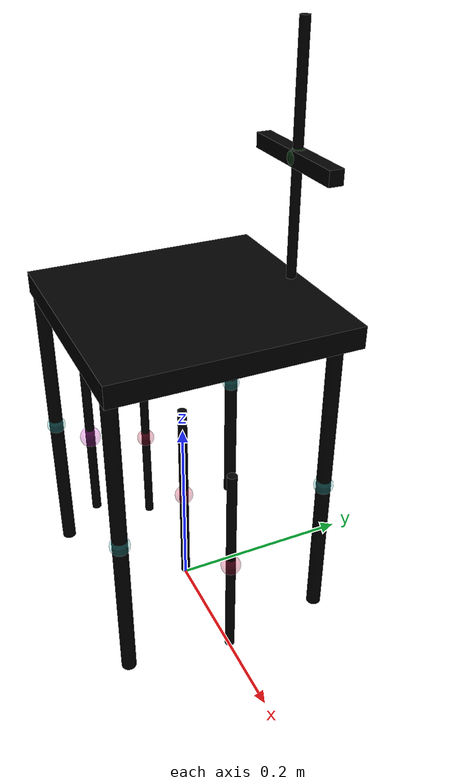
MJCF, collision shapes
<mujoco model="chair_agam_0005">
  <asset>
    <mesh file="chair_agam_0005/0.stl" name="part0" scale="0.0005039999999999999 0.0005039999999999999 0.0005039999999999999" />
    <mesh file="chair_agam_0005/9.stl" name="part9" scale="0.0005039999999999999 0.0005039999999999999 0.0005039999999999999" />
    <mesh file="chair_agam_0005/8.stl" name="part8" scale="0.0005039999999999999 0.0005039999999999999 0.0005039999999999999" />
    <mesh file="chair_agam_0005/7.stl" name="part7" scale="0.0005039999999999999 0.0005039999999999999 0.0005039999999999999" />
    <mesh file="chair_agam_0005/6.stl" name="part6" scale="0.0005039999999999999 0.0005039999999999999 0.0005039999999999999" />
    <mesh file="chair_agam_0005/5.stl" name="part5" scale="0.0005039999999999999 0.0005039999999999999 0.0005039999999999999" />
    <mesh file="chair_agam_0005/4.stl" name="part4" scale="0.0005039999999999999 0.0005039999999999999 0.0005039999999999999" />
    <mesh file="chair_agam_0005/3.stl" name="part3" scale="0.0005039999999999999 0.0005039999999999999 0.0005039999999999999" />
    <mesh file="chair_agam_0005/2.stl" name="part2" scale="0.0005039999999999999 0.0005039999999999999 0.0005039999999999999" />
    <mesh file="chair_agam_0005/1.stl" name="part1" scale="0.0005039999999999999 0.0005039999999999999 0.0005039999999999999" />
  </asset>
  <worldbody>
  <inertial mass="5.0" diaginertia="0.05 0.05 0.05" pos="0 0 0" />
  <body name="combined_body" pos="0 0 0.1145425725097656" quat="1 0 0 0"><geom conaffinity="0" contype="0" density="0" mesh="part0" name="0_part0_mesh" pos="-1.0079999999999999e-10 5.0399999999999995e-11 0.0" rgba="0.82 0.71 0.55 1" type="mesh" quat="1 0 0 0" />
      <geom density="50" name="noviz_collision_0_part0_0" pos="-1.0079999999999999e-10 5.0399999999999995e-11 0.0" quat="1 0 0 0" rgba="0 0 0 0" size="0.00504 0.11088" solref="0.001 1" type="cylinder" />
    <site name="0_part0_horizontal_radius_site" pos="-1.0079999999999999e-10 5.0399999999999995e-11 0.0" quat="1 0 0 0" rgba="0 0 0 0" size="0.0005039999999999999" />
      <site name="0_part0_top_site" pos="-1.0079999999999999e-10 5.0399999999999995e-11 0.0" quat="1 0 0 0" rgba="0 0 0 0" size="0.0005039999999999999" />
      <site name="0_part0_bottom_site" pos="-1.0079999999999999e-10 5.0399999999999995e-11 0.0" quat="1 0 0 0" rgba="0 0 0 0" size="0.0005039999999999999" />
      <site name="0_part0_corner_site8" pos="-1.0079999999999999e-10 5.0399999999999995e-11 0.0" quat="1 0 0 0" rgba="0 0 0 0" size="0.01008" />
      <site name="0_part0_corner_site7" pos="-1.0079999999999999e-10 5.0399999999999995e-11 0.0" quat="1 0 0 0" rgba="0 0 0 0" size="0.01008" />
      <site name="0_part0_corner_site6" pos="-1.0079999999999999e-10 5.0399999999999995e-11 0.0" quat="1 0 0 0" rgba="0 0 0 0" size="0.01008" />
      <site name="0_part0_corner_site5" pos="-1.0079999999999999e-10 5.0399999999999995e-11 0.0" quat="1 0 0 0" rgba="0 0 0 0" size="0.01008" />
      <site name="0_part0_corner_site4" pos="-1.0079999999999999e-10 5.0399999999999995e-11 0.0" quat="1 0 0 0" rgba="0 0 0 0" size="0.01008" />
      <site name="0_part0_corner_site3" pos="-1.0079999999999999e-10 5.0399999999999995e-11 0.0" quat="1 0 0 0" rgba="0 0 0 0" size="0.01008" />
      <site name="0_part0_corner_site2" pos="-1.0079999999999999e-10 5.0399999999999995e-11 0.0" quat="1 0 0 0" rgba="0 0 0 0" size="0.01008" />
      <site name="0_part0_corner_site1" pos="-1.0079999999999999e-10 5.0399999999999995e-11 0.0" quat="1 0 0 0" rgba="0 0 0 0" size="0.01008" />
      <site name="centerpole-sidepole,conn_site2" pos="-1.0079999999999999e-10 5.0399999999999995e-11 0.0" quat="1 0 0 0" rgba="0.9019 0.0980 0.2941 0.3" size="0.01008" />
      <site name="centerpole-sidepole,conn_site1" pos="-1.0079999999999999e-10 5.0399999999999995e-11 0.0" quat="1 0 0 0" rgba="0.9019 0.0980 0.2941 0.3" size="0.01008" />
      <site name="centerpole-sidepole,conn_site0" pos="-1.0079999999999999e-10 5.0399999999999995e-11 0.0" quat="1 0 0 0" rgba="0.9019 0.0980 0.2941 0.3" size="0.01008" />
      <site name="centerpole-sidepole,conn_site-1" pos="-1.0079999999999999e-10 5.0399999999999995e-11 0.0" quat="1 0 0 0" rgba="0.9019 0.0980 0.2941 0.3" size="0.01008" />
      <geom conaffinity="0" contype="0" density="0" mesh="part9" name="9_part9_mesh" pos="-8.9208e-09 0.1202628134232 0.35704090280879996" rgba="0.82 0.71 0.55 1" type="mesh" quat="1 0 0 0" />
      <geom density="50" name="noviz_collision_9_part9_0" pos="-8.9208e-09 0.1202628134232 0.35704090280879996" quat="1 0 0 0" rgba="0 0 0 0" size="0.00504 0.12095999999999998" solref="0.001 1" type="cylinder" />
      <geom density="50" name="noviz_collision_9_part9_1" pos="-8.9208e-09 0.1202628134232 0.35704090280879996" quat="1 0 0 0" rgba="0 0 0 0" size="0.00504 0.12095999999999998" solref="0.001 1" type="cylinder" />
      <geom density="50" name="noviz_collision_9_part9_2" pos="-8.9208e-09 0.1202628134232 0.35704090280879996" quat="1 0 0 0" rgba="0 0 0 0" size="0.00504 0.12095999999999998" solref="0.001 1" type="cylinder" />
      <geom density="50" name="noviz_collision_9_part9_3" pos="-8.9208e-09 0.1202628134232 0.35704090280879996" quat="1 0 0 0" rgba="0 0 0 0" size="0.00504 0.12095999999999998" solref="0.001 1" type="cylinder" />
      <geom density="50" name="noviz_collision_9_part9_4" pos="-8.9208e-09 0.1202628134232 0.35704090280879996" quat="1 0 0 0" rgba="0 0 0 0" size="0.00504 0.12095999999999998" solref="0.001 1" type="cylinder" />
      <geom density="50" name="noviz_collision_9_part9_5" pos="-8.9208e-09 0.1202628134232 0.35704090280879996" quat="1 0 0 0" rgba="0 0 0 0" size="0.06804 0.007559999999999999 0.007559999999999999" solref="0.001 1" type="box" />
      <geom density="50" name="noviz_collision_9_part9_6" pos="-8.9208e-09 0.1202628134232 0.35704090280879996" quat="1 0 0 0" rgba="0 0 0 0" size="0.06804 0.007559999999999999 0.007559999999999999" solref="0.001 1" type="box" />
    <site name="9_part9_horizontal_radius_site" pos="-8.9208e-09 0.1202628134232 0.35704090280879996" quat="1 0 0 0" rgba="0 0 0 0" size="0.0005039999999999999" />
      <site name="9_part9_top_site" pos="-8.9208e-09 0.1202628134232 0.35704090280879996" quat="1 0 0 0" rgba="0 0 0 0" size="0.0005039999999999999" />
      <site name="9_part9_bottom_site" pos="-8.9208e-09 0.1202628134232 0.35704090280879996" quat="1 0 0 0" rgba="0 0 0 0" size="0.0005039999999999999" />
      <site name="9_part9_corner_site8" pos="-8.9208e-09 0.1202628134232 0.35704090280879996" quat="1 0 0 0" rgba="0 0 0 0" size="0.01008" />
      <site name="9_part9_corner_site7" pos="-8.9208e-09 0.1202628134232 0.35704090280879996" quat="1 0 0 0" rgba="0 0 0 0" size="0.01008" />
      <site name="9_part9_corner_site6" pos="-8.9208e-09 0.1202628134232 0.35704090280879996" quat="1 0 0 0" rgba="0 0 0 0" size="0.01008" />
      <site name="9_part9_corner_site5" pos="-8.9208e-09 0.1202628134232 0.35704090280879996" quat="1 0 0 0" rgba="0 0 0 0" size="0.01008" />
      <site name="9_part9_corner_site4" pos="-8.9208e-09 0.1202628134232 0.35704090280879996" quat="1 0 0 0" rgba="0 0 0 0" size="0.01008" />
      <site name="9_part9_corner_site3" pos="-8.9208e-09 0.1202628134232 0.35704090280879996" quat="1 0 0 0" rgba="0 0 0 0" size="0.01008" />
      <site name="9_part9_corner_site2" pos="-8.9208e-09 0.1202628134232 0.35704090280879996" quat="1 0 0 0" rgba="0 0 0 0" size="0.01008" />
      <site name="9_part9_corner_site1" pos="-8.9208e-09 0.1202628134232 0.35704090280879996" quat="1 0 0 0" rgba="0 0 0 0" size="0.01008" />
      <site name="back-seat,0,conn_site1" pos="-8.9208e-09 0.1202628134232 0.35704090280879996" quat="1 0 0 0" rgba="0.2352 0.7058 0.2941 0.3" size="0.01008" />
      <geom conaffinity="0" contype="0" density="0" mesh="part8" name="8_part8_mesh" pos="-7.3584e-09 0.0074996166672 0.22616160204959995" rgba="0.82 0.71 0.55 1" type="mesh" quat="1 0 0 0" />
      <geom density="50" name="noviz_collision_8_part8_0" pos="-7.3584e-09 0.0074996166672 0.22616160204959995" quat="1 0 0 0" rgba="0 0 0 0" size="0.12095999999999998 0.12347999999999999 0.01134" solref="0.001 1" type="box" />
    <site name="8_part8_horizontal_radius_site" pos="-7.3584e-09 0.0074996166672 0.22616160204959995" quat="1 0 0 0" rgba="0 0 0 0" size="0.0005039999999999999" />
      <site name="8_part8_top_site" pos="-7.3584e-09 0.0074996166672 0.22616160204959995" quat="1 0 0 0" rgba="0 0 0 0" size="0.0005039999999999999" />
      <site name="8_part8_bottom_site" pos="-7.3584e-09 0.0074996166672 0.22616160204959995" quat="1 0 0 0" rgba="0 0 0 0" size="0.0005039999999999999" />
      <site name="8_part8_corner_site8" pos="-7.3584e-09 0.0074996166672 0.22616160204959995" quat="1 0 0 0" rgba="0 0 0 0" size="0.01008" />
      <site name="8_part8_corner_site7" pos="-7.3584e-09 0.0074996166672 0.22616160204959995" quat="1 0 0 0" rgba="0 0 0 0" size="0.01008" />
      <site name="8_part8_corner_site6" pos="-7.3584e-09 0.0074996166672 0.22616160204959995" quat="1 0 0 0" rgba="0 0 0 0" size="0.01008" />
      <site name="8_part8_corner_site5" pos="-7.3584e-09 0.0074996166672 0.22616160204959995" quat="1 0 0 0" rgba="0 0 0 0" size="0.01008" />
      <site name="8_part8_corner_site4" pos="-7.3584e-09 0.0074996166672 0.22616160204959995" quat="1 0 0 0" rgba="0 0 0 0" size="0.01008" />
      <site name="8_part8_corner_site3" pos="-7.3584e-09 0.0074996166672 0.22616160204959995" quat="1 0 0 0" rgba="0 0 0 0" size="0.01008" />
      <site name="8_part8_corner_site2" pos="-7.3584e-09 0.0074996166672 0.22616160204959995" quat="1 0 0 0" rgba="0 0 0 0" size="0.01008" />
      <site name="8_part8_corner_site1" pos="-7.3584e-09 0.0074996166672 0.22616160204959995" quat="1 0 0 0" rgba="0 0 0 0" size="0.01008" />
      <site name="seat-back,0,conn_site1" pos="-7.3584e-09 0.0074996166672 0.22616160204959995" quat="1 0 0 0" rgba="0.2352 0.7058 0.2941 0.3" size="0.01008" />
      <site name="seat-leg4,0,conn_site1" pos="-7.3584e-09 0.0074996166672 0.22616160204959995" quat="1 0 0 0" rgba="1.0 0.8823 0.0980 0.3" size="0.01008" />
      <site name="seat-leg5,0,conn_site1" pos="-7.3584e-09 0.0074996166672 0.22616160204959995" quat="1 0 0 0" rgba="0.2627 0.3882 0.8470 0.3" size="0.01008" />
      <site name="seat-leg6,0,conn_site1" pos="-7.3584e-09 0.0074996166672 0.22616160204959995" quat="1 0 0 0" rgba="0.9607 0.5098 0.1921 0.3" size="0.01008" />
      <site name="seat-leg7,0,conn_site1" pos="-7.3584e-09 0.0074996166672 0.22616160204959995" quat="1 0 0 0" rgba="0.5686 0.1176 0.7058 0.3" size="0.01008" />
      <geom conaffinity="0" contype="0" density="0" mesh="part7" name="7_part7_mesh" pos="-0.10801543435199998 -0.10800391376879999 0.0567182570976" rgba="0.82 0.71 0.55 1" type="mesh" quat="1 0 0 0" />
      <geom density="50" name="noviz_collision_7_part7_0" pos="-0.10801543435199998 -0.10800391376879999 0.0567182570976" quat="1 0 0 0" rgba="0 0 0 0" size="0.007559999999999999 0.16128" solref="0.001 1" type="cylinder" />
    <site name="7_part7_horizontal_radius_site" pos="-0.10801543435199998 -0.10800391376879999 0.0567182570976" quat="1 0 0 0" rgba="0 0 0 0" size="0.0005039999999999999" />
      <site name="7_part7_top_site" pos="-0.10801543435199998 -0.10800391376879999 0.0567182570976" quat="1 0 0 0" rgba="0 0 0 0" size="0.0005039999999999999" />
      <site name="7_part7_bottom_site" pos="-0.10801543435199998 -0.10800391376879999 0.0567182570976" quat="1 0 0 0" rgba="0 0 0 0" size="0.0005039999999999999" />
      <site name="7_part7_corner_site8" pos="-0.10801543435199998 -0.10800391376879999 0.0567182570976" quat="1 0 0 0" rgba="0 0 0 0" size="0.01008" />
      <site name="7_part7_corner_site7" pos="-0.10801543435199998 -0.10800391376879999 0.0567182570976" quat="1 0 0 0" rgba="0 0 0 0" size="0.01008" />
      <site name="7_part7_corner_site6" pos="-0.10801543435199998 -0.10800391376879999 0.0567182570976" quat="1 0 0 0" rgba="0 0 0 0" size="0.01008" />
      <site name="7_part7_corner_site5" pos="-0.10801543435199998 -0.10800391376879999 0.0567182570976" quat="1 0 0 0" rgba="0 0 0 0" size="0.01008" />
      <site name="7_part7_corner_site4" pos="-0.10801543435199998 -0.10800391376879999 0.0567182570976" quat="1 0 0 0" rgba="0 0 0 0" size="0.01008" />
      <site name="7_part7_corner_site3" pos="-0.10801543435199998 -0.10800391376879999 0.0567182570976" quat="1 0 0 0" rgba="0 0 0 0" size="0.01008" />
      <site name="7_part7_corner_site2" pos="-0.10801543435199998 -0.10800391376879999 0.0567182570976" quat="1 0 0 0" rgba="0 0 0 0" size="0.01008" />
      <site name="7_part7_corner_site1" pos="-0.10801543435199998 -0.10800391376879999 0.0567182570976" quat="1 0 0 0" rgba="0 0 0 0" size="0.01008" />
      <site name="leg-sidepole,0,180,conn_site4" pos="-0.10801543435199998 -0.10800391376879999 0.0567182570976" quat="1 0 0 0" rgba="0.2745 0.9411 0.9411 0.3" size="0.01008" />
      <site name="leg-frontpole,conn_site1" pos="-0.10801543435199998 -0.10800391376879999 0.0567182570976" quat="1 0 0 0" rgba="0.9411 0.1960 0.9019 0.3" size="0.01008" />
      <site name="leg7-seat,0,conn_site1" pos="-0.10801543435199998 -0.10800391376879999 0.0567182570976" quat="1 0 0 0" rgba="0.5686 0.1176 0.7058 0.3" size="0.01008" />
      <geom conaffinity="0" contype="0" density="0" mesh="part6" name="6_part6_mesh" pos="0.10801541963519998 -0.10800391376879999 0.0567182570976" rgba="0.82 0.71 0.55 1" type="mesh" quat="1 0 0 0" />
      <geom density="50" name="noviz_collision_6_part6_0" pos="0.10801541963519998 -0.10800391376879999 0.0567182570976" quat="1 0 0 0" rgba="0 0 0 0" size="0.007559999999999999 0.16128" solref="0.001 1" type="cylinder" />
    <site name="6_part6_horizontal_radius_site" pos="0.10801541963519998 -0.10800391376879999 0.0567182570976" quat="1 0 0 0" rgba="0 0 0 0" size="0.0005039999999999999" />
      <site name="6_part6_top_site" pos="0.10801541963519998 -0.10800391376879999 0.0567182570976" quat="1 0 0 0" rgba="0 0 0 0" size="0.0005039999999999999" />
      <site name="6_part6_bottom_site" pos="0.10801541963519998 -0.10800391376879999 0.0567182570976" quat="1 0 0 0" rgba="0 0 0 0" size="0.0005039999999999999" />
      <site name="6_part6_corner_site8" pos="0.10801541963519998 -0.10800391376879999 0.0567182570976" quat="1 0 0 0" rgba="0 0 0 0" size="0.01008" />
      <site name="6_part6_corner_site7" pos="0.10801541963519998 -0.10800391376879999 0.0567182570976" quat="1 0 0 0" rgba="0 0 0 0" size="0.01008" />
      <site name="6_part6_corner_site6" pos="0.10801541963519998 -0.10800391376879999 0.0567182570976" quat="1 0 0 0" rgba="0 0 0 0" size="0.01008" />
      <site name="6_part6_corner_site5" pos="0.10801541963519998 -0.10800391376879999 0.0567182570976" quat="1 0 0 0" rgba="0 0 0 0" size="0.01008" />
      <site name="6_part6_corner_site4" pos="0.10801541963519998 -0.10800391376879999 0.0567182570976" quat="1 0 0 0" rgba="0 0 0 0" size="0.01008" />
      <site name="6_part6_corner_site3" pos="0.10801541963519998 -0.10800391376879999 0.0567182570976" quat="1 0 0 0" rgba="0 0 0 0" size="0.01008" />
      <site name="6_part6_corner_site2" pos="0.10801541963519998 -0.10800391376879999 0.0567182570976" quat="1 0 0 0" rgba="0 0 0 0" size="0.01008" />
      <site name="6_part6_corner_site1" pos="0.10801541963519998 -0.10800391376879999 0.0567182570976" quat="1 0 0 0" rgba="0 0 0 0" size="0.01008" />
      <site name="leg-sidepole,0,180,conn_site2" pos="0.10801541963519998 -0.10800391376879999 0.0567182570976" quat="1 0 0 0" rgba="0.2745 0.9411 0.9411 0.3" size="0.01008" />
      <site name="leg-frontpole,conn_site2" pos="0.10801541963519998 -0.10800391376879999 0.0567182570976" quat="1 0 0 0" rgba="0.9411 0.1960 0.9019 0.3" size="0.01008" />
      <site name="leg6-seat,0,conn_site1" pos="0.10801541963519998 -0.10800391376879999 0.0567182570976" quat="1 0 0 0" rgba="0.9607 0.5098 0.1921 0.3" size="0.01008" />
      <geom conaffinity="0" contype="0" density="0" mesh="part5" name="5_part5_mesh" pos="0.10801541963519998 0.10800392112719999 0.0567182570976" rgba="0.82 0.71 0.55 1" type="mesh" quat="1 0 0 0" />
      <geom density="50" name="noviz_collision_5_part5_0" pos="0.10801541963519998 0.10800392112719999 0.0567182570976" quat="1 0 0 0" rgba="0 0 0 0" size="0.007559999999999999 0.16128" solref="0.001 1" type="cylinder" />
    <site name="5_part5_horizontal_radius_site" pos="0.10801541963519998 0.10800392112719999 0.0567182570976" quat="1 0 0 0" rgba="0 0 0 0" size="0.0005039999999999999" />
      <site name="5_part5_top_site" pos="0.10801541963519998 0.10800392112719999 0.0567182570976" quat="1 0 0 0" rgba="0 0 0 0" size="0.0005039999999999999" />
      <site name="5_part5_bottom_site" pos="0.10801541963519998 0.10800392112719999 0.0567182570976" quat="1 0 0 0" rgba="0 0 0 0" size="0.0005039999999999999" />
      <site name="5_part5_corner_site8" pos="0.10801541963519998 0.10800392112719999 0.0567182570976" quat="1 0 0 0" rgba="0 0 0 0" size="0.01008" />
      <site name="5_part5_corner_site7" pos="0.10801541963519998 0.10800392112719999 0.0567182570976" quat="1 0 0 0" rgba="0 0 0 0" size="0.01008" />
      <site name="5_part5_corner_site6" pos="0.10801541963519998 0.10800392112719999 0.0567182570976" quat="1 0 0 0" rgba="0 0 0 0" size="0.01008" />
      <site name="5_part5_corner_site5" pos="0.10801541963519998 0.10800392112719999 0.0567182570976" quat="1 0 0 0" rgba="0 0 0 0" size="0.01008" />
      <site name="5_part5_corner_site4" pos="0.10801541963519998 0.10800392112719999 0.0567182570976" quat="1 0 0 0" rgba="0 0 0 0" size="0.01008" />
      <site name="5_part5_corner_site3" pos="0.10801541963519998 0.10800392112719999 0.0567182570976" quat="1 0 0 0" rgba="0 0 0 0" size="0.01008" />
      <site name="5_part5_corner_site2" pos="0.10801541963519998 0.10800392112719999 0.0567182570976" quat="1 0 0 0" rgba="0 0 0 0" size="0.01008" />
      <site name="5_part5_corner_site1" pos="0.10801541963519998 0.10800392112719999 0.0567182570976" quat="1 0 0 0" rgba="0 0 0 0" size="0.01008" />
      <site name="leg-sidepole,0,180,conn_site1" pos="0.10801541963519998 0.10800392112719999 0.0567182570976" quat="1 0 0 0" rgba="0.2745 0.9411 0.9411 0.3" size="0.01008" />
      <site name="leg5-seat,0,conn_site1" pos="0.10801541963519998 0.10800392112719999 0.0567182570976" quat="1 0 0 0" rgba="0.2627 0.3882 0.8470 0.3" size="0.01008" />
      <geom conaffinity="0" contype="0" density="0" mesh="part4" name="4_part4_mesh" pos="-0.10801543435199998 0.10800392112719999 0.0567182570976" rgba="0.82 0.71 0.55 1" type="mesh" quat="1 0 0 0" />
      <geom density="50" name="noviz_collision_4_part4_0" pos="-0.10801543435199998 0.10800392112719999 0.0567182570976" quat="1 0 0 0" rgba="0 0 0 0" size="0.007559999999999999 0.16128" solref="0.001 1" type="cylinder" />
    <site name="4_part4_horizontal_radius_site" pos="-0.10801543435199998 0.10800392112719999 0.0567182570976" quat="1 0 0 0" rgba="0 0 0 0" size="0.0005039999999999999" />
      <site name="4_part4_top_site" pos="-0.10801543435199998 0.10800392112719999 0.0567182570976" quat="1 0 0 0" rgba="0 0 0 0" size="0.0005039999999999999" />
      <site name="4_part4_bottom_site" pos="-0.10801543435199998 0.10800392112719999 0.0567182570976" quat="1 0 0 0" rgba="0 0 0 0" size="0.0005039999999999999" />
      <site name="4_part4_corner_site8" pos="-0.10801543435199998 0.10800392112719999 0.0567182570976" quat="1 0 0 0" rgba="0 0 0 0" size="0.01008" />
      <site name="4_part4_corner_site7" pos="-0.10801543435199998 0.10800392112719999 0.0567182570976" quat="1 0 0 0" rgba="0 0 0 0" size="0.01008" />
      <site name="4_part4_corner_site6" pos="-0.10801543435199998 0.10800392112719999 0.0567182570976" quat="1 0 0 0" rgba="0 0 0 0" size="0.01008" />
      <site name="4_part4_corner_site5" pos="-0.10801543435199998 0.10800392112719999 0.0567182570976" quat="1 0 0 0" rgba="0 0 0 0" size="0.01008" />
      <site name="4_part4_corner_site4" pos="-0.10801543435199998 0.10800392112719999 0.0567182570976" quat="1 0 0 0" rgba="0 0 0 0" size="0.01008" />
      <site name="4_part4_corner_site3" pos="-0.10801543435199998 0.10800392112719999 0.0567182570976" quat="1 0 0 0" rgba="0 0 0 0" size="0.01008" />
      <site name="4_part4_corner_site2" pos="-0.10801543435199998 0.10800392112719999 0.0567182570976" quat="1 0 0 0" rgba="0 0 0 0" size="0.01008" />
      <site name="4_part4_corner_site1" pos="-0.10801543435199998 0.10800392112719999 0.0567182570976" quat="1 0 0 0" rgba="0 0 0 0" size="0.01008" />
      <site name="leg-sidepole,0,180,conn_site3" pos="-0.10801543435199998 0.10800392112719999 0.0567182570976" quat="1 0 0 0" rgba="0.2745 0.9411 0.9411 0.3" size="0.01008" />
      <site name="leg4-seat,0,conn_site1" pos="-0.10801543435199998 0.10800392112719999 0.0567182570976" quat="1 0 0 0" rgba="1.0 0.8823 0.0980 0.3" size="0.01008" />
      <geom conaffinity="0" contype="0" density="0" mesh="part3" name="3_part3_mesh" pos="-3.9312e-09 -0.09813413090879998 0.1066800061152" rgba="0.82 0.71 0.55 1" type="mesh" quat="1 0 0 0" />
      <geom density="50" name="noviz_collision_3_part3_0" pos="-3.9312e-09 -0.09813413090879998 0.1066800061152" quat="1 0 0 0" rgba="0 0 0 0" size="0.004536 0.0882" solref="0.001 1" type="cylinder" />
    <site name="3_part3_horizontal_radius_site" pos="-3.9312e-09 -0.09813413090879998 0.1066800061152" quat="1 0 0 0" rgba="0 0 0 0" size="0.0005039999999999999" />
      <site name="3_part3_top_site" pos="-3.9312e-09 -0.09813413090879998 0.1066800061152" quat="1 0 0 0" rgba="0 0 0 0" size="0.0005039999999999999" />
      <site name="3_part3_bottom_site" pos="-3.9312e-09 -0.09813413090879998 0.1066800061152" quat="1 0 0 0" rgba="0 0 0 0" size="0.0005039999999999999" />
      <site name="3_part3_corner_site8" pos="-3.9312e-09 -0.09813413090879998 0.1066800061152" quat="1 0 0 0" rgba="0 0 0 0" size="0.01008" />
      <site name="3_part3_corner_site7" pos="-3.9312e-09 -0.09813413090879998 0.1066800061152" quat="1 0 0 0" rgba="0 0 0 0" size="0.01008" />
      <site name="3_part3_corner_site6" pos="-3.9312e-09 -0.09813413090879998 0.1066800061152" quat="1 0 0 0" rgba="0 0 0 0" size="0.01008" />
      <site name="3_part3_corner_site5" pos="-3.9312e-09 -0.09813413090879998 0.1066800061152" quat="1 0 0 0" rgba="0 0 0 0" size="0.01008" />
      <site name="3_part3_corner_site4" pos="-3.9312e-09 -0.09813413090879998 0.1066800061152" quat="1 0 0 0" rgba="0 0 0 0" size="0.01008" />
      <site name="3_part3_corner_site3" pos="-3.9312e-09 -0.09813413090879998 0.1066800061152" quat="1 0 0 0" rgba="0 0 0 0" size="0.01008" />
      <site name="3_part3_corner_site2" pos="-3.9312e-09 -0.09813413090879998 0.1066800061152" quat="1 0 0 0" rgba="0 0 0 0" size="0.01008" />
      <site name="3_part3_corner_site1" pos="-3.9312e-09 -0.09813413090879998 0.1066800061152" quat="1 0 0 0" rgba="0 0 0 0" size="0.01008" />
      <site name="frontpole-leg,conn_site2" pos="-3.9312e-09 -0.09813413090879998 0.1066800061152" quat="1 0 0 0" rgba="0.9411 0.1960 0.9019 0.3" size="0.01008" />
      <site name="frontpole-leg,conn_site1" pos="-3.9312e-09 -0.09813413090879998 0.1066800061152" quat="1 0 0 0" rgba="0.9411 0.1960 0.9019 0.3" size="0.01008" />
      <geom conaffinity="0" contype="0" density="0" mesh="part2" name="2_part2_mesh" pos="0.11948376091679999 -2.1117600000000002e-08 -1.5624e-09" rgba="0.82 0.71 0.55 1" type="mesh" quat="1 0 0 0" />
      <geom density="50" name="noviz_collision_2_part2_0" pos="0.11948376091679999 -2.1117600000000002e-08 -1.5624e-09" quat="1 0 0 0" rgba="0 0 0 0" size="0.00504 0.11088" solref="0.001 1" type="cylinder" />
    <site name="2_part2_horizontal_radius_site" pos="0.11948376091679999 -2.1117600000000002e-08 -1.5624e-09" quat="1 0 0 0" rgba="0 0 0 0" size="0.0005039999999999999" />
      <site name="2_part2_top_site" pos="0.11948376091679999 -2.1117600000000002e-08 -1.5624e-09" quat="1 0 0 0" rgba="0 0 0 0" size="0.0005039999999999999" />
      <site name="2_part2_bottom_site" pos="0.11948376091679999 -2.1117600000000002e-08 -1.5624e-09" quat="1 0 0 0" rgba="0 0 0 0" size="0.0005039999999999999" />
      <site name="2_part2_corner_site8" pos="0.11948376091679999 -2.1117600000000002e-08 -1.5624e-09" quat="1 0 0 0" rgba="0 0 0 0" size="0.01008" />
      <site name="2_part2_corner_site7" pos="0.11948376091679999 -2.1117600000000002e-08 -1.5624e-09" quat="1 0 0 0" rgba="0 0 0 0" size="0.01008" />
      <site name="2_part2_corner_site6" pos="0.11948376091679999 -2.1117600000000002e-08 -1.5624e-09" quat="1 0 0 0" rgba="0 0 0 0" size="0.01008" />
      <site name="2_part2_corner_site5" pos="0.11948376091679999 -2.1117600000000002e-08 -1.5624e-09" quat="1 0 0 0" rgba="0 0 0 0" size="0.01008" />
      <site name="2_part2_corner_site4" pos="0.11948376091679999 -2.1117600000000002e-08 -1.5624e-09" quat="1 0 0 0" rgba="0 0 0 0" size="0.01008" />
      <site name="2_part2_corner_site3" pos="0.11948376091679999 -2.1117600000000002e-08 -1.5624e-09" quat="1 0 0 0" rgba="0 0 0 0" size="0.01008" />
      <site name="2_part2_corner_site2" pos="0.11948376091679999 -2.1117600000000002e-08 -1.5624e-09" quat="1 0 0 0" rgba="0 0 0 0" size="0.01008" />
      <site name="2_part2_corner_site1" pos="0.11948376091679999 -2.1117600000000002e-08 -1.5624e-09" quat="1 0 0 0" rgba="0 0 0 0" size="0.01008" />
      <site name="sidepole-centerpole,conn_site1" pos="0.11948376091679999 -2.1117600000000002e-08 -1.5624e-09" quat="1 0 0 0" rgba="0.9019 0.0980 0.2941 0.3" size="0.01008" />
      <site name="sidepole-centerpole,conn_site-1" pos="0.11948376091679999 -2.1117600000000002e-08 -1.5624e-09" quat="1 0 0 0" rgba="0.9019 0.0980 0.2941 0.3" size="0.01008" />
      <site name="sidepole-leg,0,180,conn_site2" pos="0.11948376091679999 -2.1117600000000002e-08 -1.5624e-09" quat="1 0 0 0" rgba="0.2745 0.9411 0.9411 0.3" size="0.01008" />
      <site name="sidepole-leg,0,180,conn_site1" pos="0.11948376091679999 -2.1117600000000002e-08 -1.5624e-09" quat="1 0 0 0" rgba="0.2745 0.9411 0.9411 0.3" size="0.01008" />
      <geom conaffinity="0" contype="0" density="0" mesh="part1" name="1_part1_mesh" pos="-0.11948377976640001 -2.1117600000000002e-08 -1.5624e-09" rgba="0.82 0.71 0.55 1" type="mesh" quat="1 0 0 0" />
      <geom density="50" name="noviz_collision_1_part1_0" pos="-0.11948377976640001 -2.1117600000000002e-08 -1.5624e-09" quat="1 0 0 0" rgba="0 0 0 0" size="0.00504 0.11088" solref="0.001 1" type="cylinder" />
    <site name="1_part1_horizontal_radius_site" pos="-0.11948377976640001 -2.1117600000000002e-08 -1.5624e-09" quat="1 0 0 0" rgba="0 0 0 0" size="0.0005039999999999999" />
      <site name="1_part1_top_site" pos="-0.11948377976640001 -2.1117600000000002e-08 -1.5624e-09" quat="1 0 0 0" rgba="0 0 0 0" size="0.0005039999999999999" />
      <site name="1_part1_bottom_site" pos="-0.11948377976640001 -2.1117600000000002e-08 -1.5624e-09" quat="1 0 0 0" rgba="0 0 0 0" size="0.0005039999999999999" />
      <site name="1_part1_corner_site8" pos="-0.11948377976640001 -2.1117600000000002e-08 -1.5624e-09" quat="1 0 0 0" rgba="0 0 0 0" size="0.01008" />
      <site name="1_part1_corner_site7" pos="-0.11948377976640001 -2.1117600000000002e-08 -1.5624e-09" quat="1 0 0 0" rgba="0 0 0 0" size="0.01008" />
      <site name="1_part1_corner_site6" pos="-0.11948377976640001 -2.1117600000000002e-08 -1.5624e-09" quat="1 0 0 0" rgba="0 0 0 0" size="0.01008" />
      <site name="1_part1_corner_site5" pos="-0.11948377976640001 -2.1117600000000002e-08 -1.5624e-09" quat="1 0 0 0" rgba="0 0 0 0" size="0.01008" />
      <site name="1_part1_corner_site4" pos="-0.11948377976640001 -2.1117600000000002e-08 -1.5624e-09" quat="1 0 0 0" rgba="0 0 0 0" size="0.01008" />
      <site name="1_part1_corner_site3" pos="-0.11948377976640001 -2.1117600000000002e-08 -1.5624e-09" quat="1 0 0 0" rgba="0 0 0 0" size="0.01008" />
      <site name="1_part1_corner_site2" pos="-0.11948377976640001 -2.1117600000000002e-08 -1.5624e-09" quat="1 0 0 0" rgba="0 0 0 0" size="0.01008" />
      <site name="1_part1_corner_site1" pos="-0.11948377976640001 -2.1117600000000002e-08 -1.5624e-09" quat="1 0 0 0" rgba="0 0 0 0" size="0.01008" />
      <site name="sidepole-centerpole,conn_site2" pos="-0.11948377976640001 -2.1117600000000002e-08 -1.5624e-09" quat="1 0 0 0" rgba="0.9019 0.0980 0.2941 0.3" size="0.01008" />
      <site name="sidepole-centerpole,conn_site0" pos="-0.11948377976640001 -2.1117600000000002e-08 -1.5624e-09" quat="1 0 0 0" rgba="0.9019 0.0980 0.2941 0.3" size="0.01008" />
      <site name="sidepole-leg,0,180,conn_site4" pos="-0.11948377976640001 -2.1117600000000002e-08 -1.5624e-09" quat="1 0 0 0" rgba="0.2745 0.9411 0.9411 0.3" size="0.01008" />
      <site name="sidepole-leg,0,180,conn_site3" pos="-0.11948377976640001 -2.1117600000000002e-08 -1.5624e-09" quat="1 0 0 0" rgba="0.2745 0.9411 0.9411 0.3" size="0.01008" />
      </body></worldbody><actuator /><sensor /><contact /><default /></mujoco>
